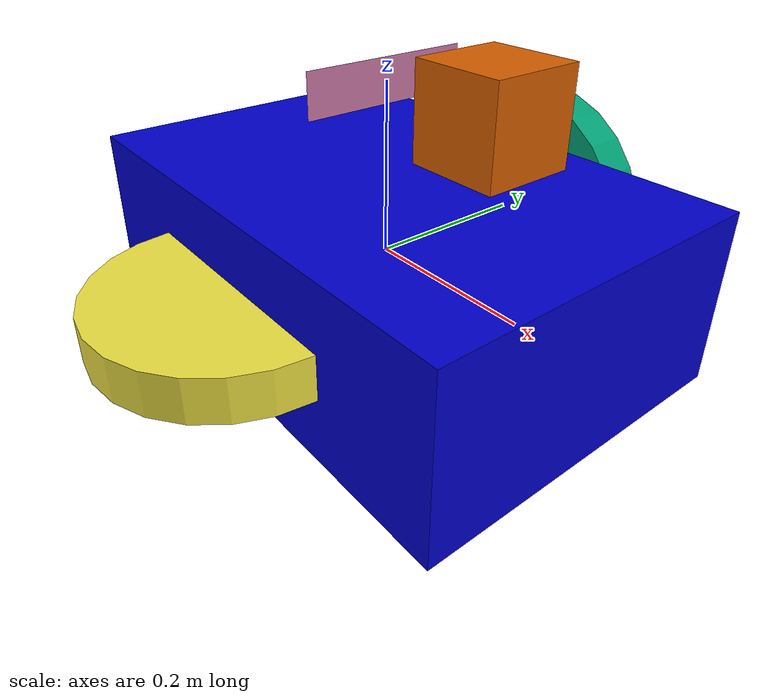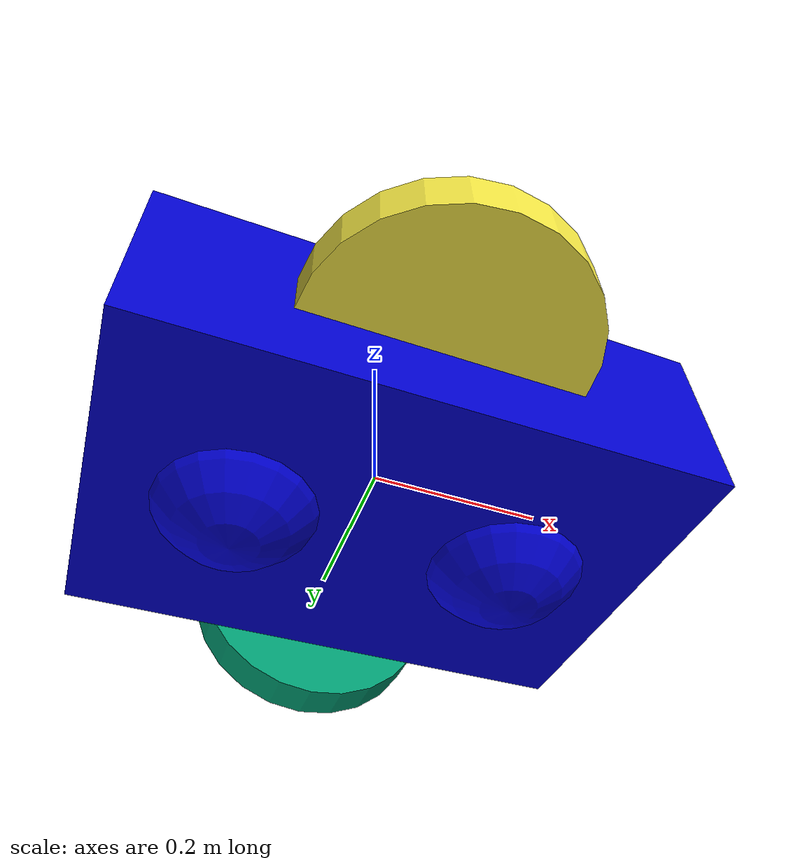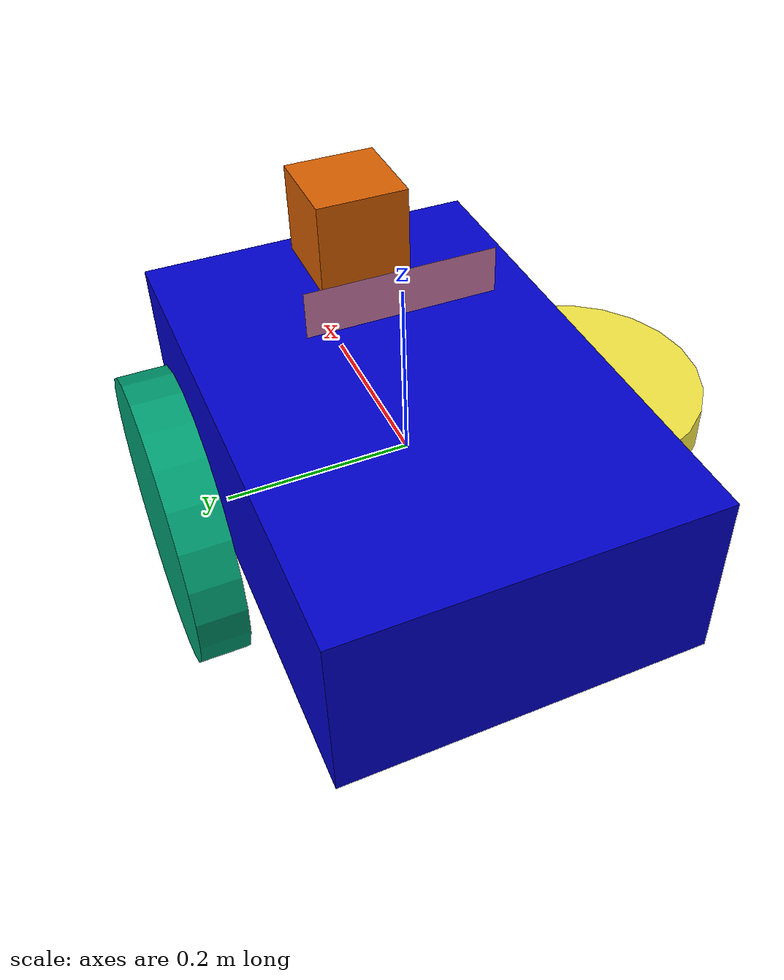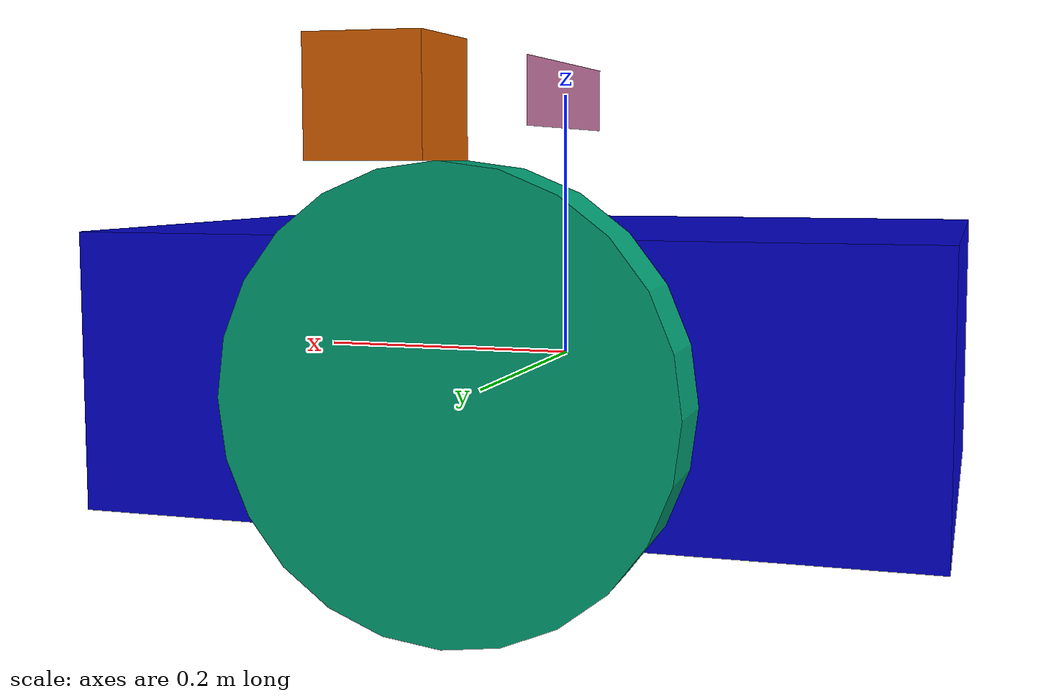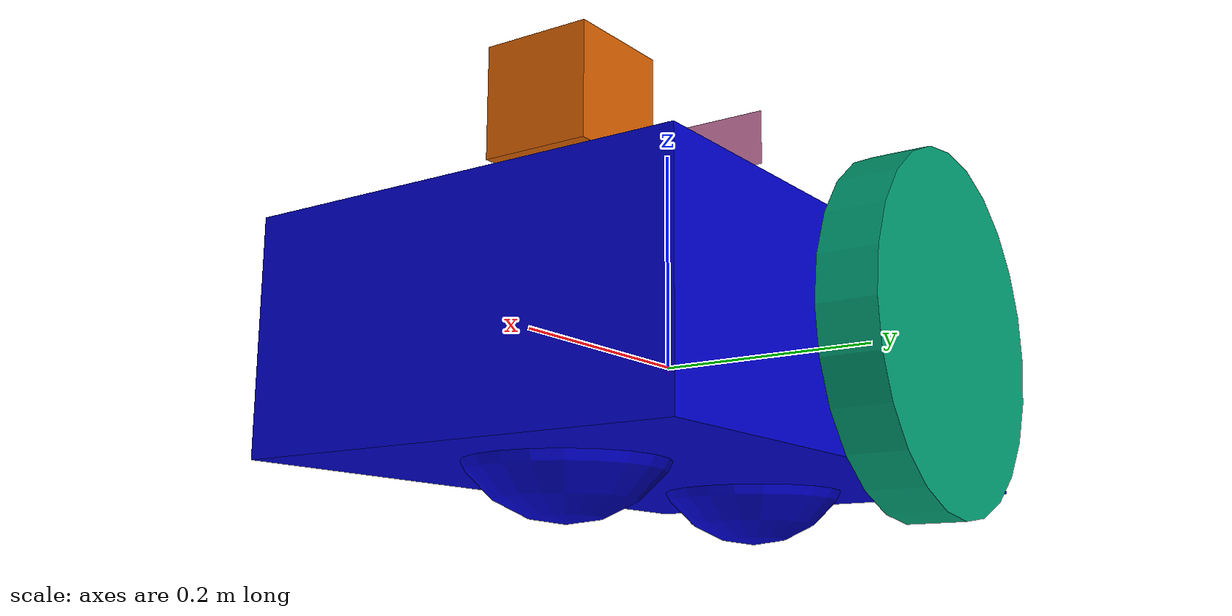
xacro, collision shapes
<?xml version="1.0"?>

<robot name="cam_robot" xmlns:xacro="http://www.ros.org/wiki/xacro">

  <xacro:include filename="$(find my_robot)/urdf/cam_robot.gazebo"/>

  <link name="robot_footprint"></link>

  <joint name="robot_footprint_joint" type="fixed">
    <origin xyz="0 0 0" rpy="0 0 0" />
    <parent link="robot_footprint"/>
    <child link="chassis" />
  </joint>

  <link name='chassis'>
    <pose>0 0 0 0 0 0</pose>

    <inertial>
    <mass value="20.0"/>
      <origin xyz="0 0 0" rpy="0 0 0"/>
      <inertia
        ixx="0.1" ixy="0" ixz="0"
        iyy="0.1" iyz="0"
        izz="0.1"
      />
    </inertial>

    <collision name='collision'>
      <origin xyz="0 0 0" rpy="0 0 0"/>
      <geometry>
        <box size=".6 .4 .2"/>
      </geometry>
    </collision>

    <visual name='chassis_visual'>
      <origin xyz="0 0 0" rpy="0 0 0"/>
      <geometry>
        <box size=".6 .4 .2"/>
      </geometry>
      <material name='chassis_color'>
  	<color rgba="0 0 0.8 1"/>
      </material>
    </visual>

    <collision name='back_caster_collision'>
      <origin xyz="-0.15 0 -0.05" rpy="0 0 0"/>
      <geometry>
        <sphere radius="0.1"/>
      </geometry>
    </collision>

    <visual name='back_caster_visual'>
      <origin xyz="-0.15 0 -0.05" rpy="0 0 0"/>
      <geometry>
        <sphere radius="0.1"/>
      </geometry>
    </visual>

    <collision name='front_caster_collision'>
      <origin xyz="0.15 0 -0.05" rpy="0 0 0"/>
      <geometry>
        <sphere radius="0.1"/>
      </geometry>
    </collision>

    <visual name='front_caster_visual'>
      <origin xyz="0.15 0 -0.05" rpy="0 0 0"/>
      <geometry>
        <sphere radius="0.1"/>
      </geometry>
    </visual>

  </link>

  <link name="left_wheel">

    <inertial>
      <mass value="5"/>
      <origin xyz="0 0.05 0" rpy="0 1.5707 1.5707"/>
      <inertia
        ixx="0.1" ixy="0" ixz="0"
        iyy="0.1" iyz="0"
        izz="0.1"
      />
    </inertial>

    <visual name="left_wheel_visual">
      <origin xyz="0 0.05 0" rpy="0 1.5707 1.5707"/>
      <geometry>
        <cylinder radius="0.15" length="0.05"/>
      </geometry>
    </visual>

    <collision name="left_wheel_collision">
      <origin xyz="0 0.05 0" rpy="0 1.5707 1.5707"/>
      <geometry>
        <cylinder radius="0.15" length="0.05"/>
      </geometry>
    </collision>
  </link>

  <link name="right_wheel">

    <inertial>
      <mass value="5"/>
      <origin xyz="0 0.05 0" rpy="0 1.5707 1.5707"/>
      <inertia
        ixx="0.1" ixy="0" ixz="0"
        iyy="0.1" iyz="0"
        izz="0.1"
      />
    </inertial>

    <visual name="right_wheel_visual">
      <origin xyz="0 -0.05 0" rpy="0 1.5707 1.5707"/>
      <geometry>
        <cylinder radius="0.15" length="0.05"/>
      </geometry>
    </visual>

    <collision name="right_wheel_collision">
      <orgin xyz="0 -0.05 0" rpy="0 1.5707 1.5707"/>
      <geometry>
        <cylinder radius="0.15" length="0.05"/>
      </geometry>
    </collision>
  </link>

  <link name="camera_link">
    <inertial>
      <mass value="0.1"/>
      <origin xyz="0 0 0" rpy="0 0 0"/>
      <inertia
        ixx="1e-6" ixy="0" ixz="0"
        iyy="1e-6" iyz="0"
        izz="1e-6"
      />
    </inertial>

    <collision name='camera_link_collision'>
      <origin xyz="0 0 0" rpy="0 0 0"/>
      <geometry>
        <box size="0.05 0.05 0.05"/>
      </geometry>
      <box_inertia m="0.1" x="0.05" y="0.05" z="0.05"/>
    </collision>

    <visual name='camera_link_visual'>
      <origin xyz="0 0 0" rpy="0 0 0"/>
      <geometry>
        <box size="0.1 0.1 0.1"/>
      </geometry>
      <box_inertia m="0.1" x="0.05" y="0.05" z="0.05"/>
    </visual>

  </link>

  <joint type="continuous" name="left_wheel_hinge">
    <origin xyz="0 0.2 0"/>
    <child link="left_wheel"/>
    <parent link="chassis"/>
    <axis xyz="0 1 0" rpy="0 0 0"/>
    <limit effort="10000" velocity="1000"/>
    <dynamics damping="1.0" friction="1.0"/>
  </joint>

  <joint type="continuous" name="right_wheel_hinge">
    <origin xyz="0 -0.2 0"/>
    <child link="right_wheel"/>
    <parent link="chassis"/>
    <axis xyz="0 1 0" rpy="0 0 0"/>
    <limit effort="10000" velocity="1000"/>
    <dynamics damping="1.0" friction="1.0"/>
  </joint>

  <joint type="fixed" name="camera_link_joint">
    <origin xyz="0.2 0 0" rpy="0 0 0"/>
    <child link="camera_link"/>
    <parent link="chassis"/>
    <axis xyz="0 1 0"/>
  </joint>

  <link name="hokuyo">

    <inertial>
      <mass value="1e-5"/>
      <origin xyz="0 0 0" rpy="0 0 0"/>
      <inertia
        ixx="1e-6" ixy="0" ixz="0"
        iyy="1e-6" iyz="0"
        izz="1e-6"
      />
    </inertial>

    <collision name='hokuyo_collision'>
      <origin xyz="0 0 0" rpy="0 0 0"/>
      <geometry>
        <box size="0.1 0.1 0.1"/>
      </geometry>
    </collision>

    <visual name='hokuyo_visual'>
      <origin xyz="0 0 0" rpy="0 0 0"/>
      <geometry>
        <mesh filename="package://my_robot/meshes/hokuyo.dae"/>
      </geometry>
    </visual>

  </link>

  <joint type="fixed" name="hokuyo_joint">
    <origin xyz="0.15 0 0.2" rpy="0 0 0"/>
    <child link="hokuyo"/>
    <parent link="chassis"/>
    <axis xyz="0 1 0" rpy="0 0 0"/>
  </joint>

  <link name="camera_link_optical">
  <inertial>
      <mass value="0.2"/>
      <origin xyz="0 0 0" rpy="0 0 0"/>
      <inertia
        ixx="1e-6" ixy="0" ixz="0"
        iyy="1e-6" iyz="0"
        izz="1e-6"
      />
  </inertial>

    <collision name='camera_link_optical_collision'>
      <origin xyz="0 0 0" rpy="0 0 0"/>
      <geometry>
        <box size="0 0.2 0.05"/>
      </geometry>
      <box_inertia m="0.2" x="0.05" y="0.05" z="0.05"/>
    </collision>

    <visual name='camera_link_optical_visual'>
      <origin xyz="0 0 0" rpy="0 0 0"/>
      <geometry>
        <mesh filename="package://my_robot/meshes/kinect.dae"/>
      </geometry>
      <box_inertia m="0.2" x="0.05" y="0.05" z="0.05"/>
    </visual>
  </link>

  <joint name="camera_optical_joint" type="fixed">
    <origin xyz="0 0 0.2" rpy="0 0 0"/>
    <parent link="chassis"/>
    <child link="camera_link_optical"/>
    <axis xyz="0 0 1" rpy="0 0 0"/>
  </joint>

</robot>
